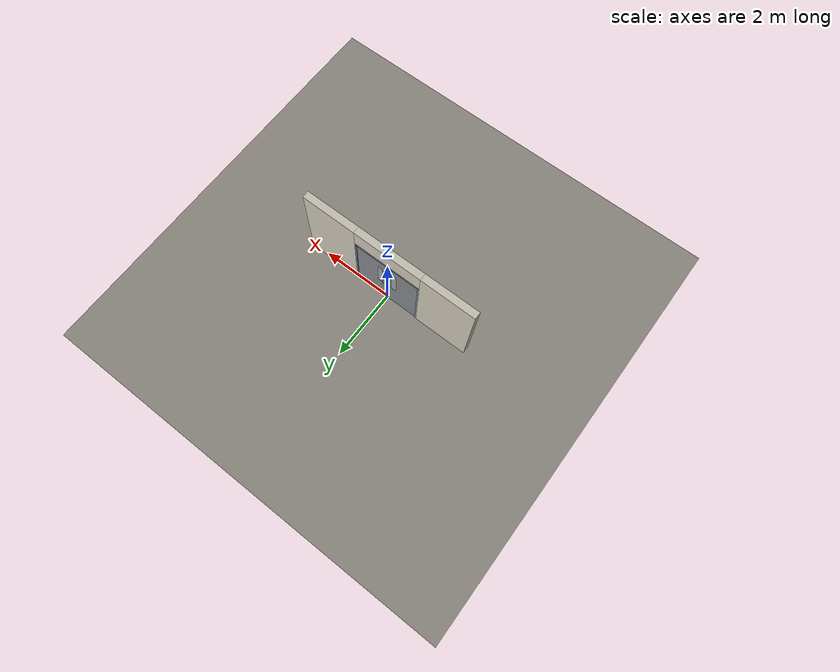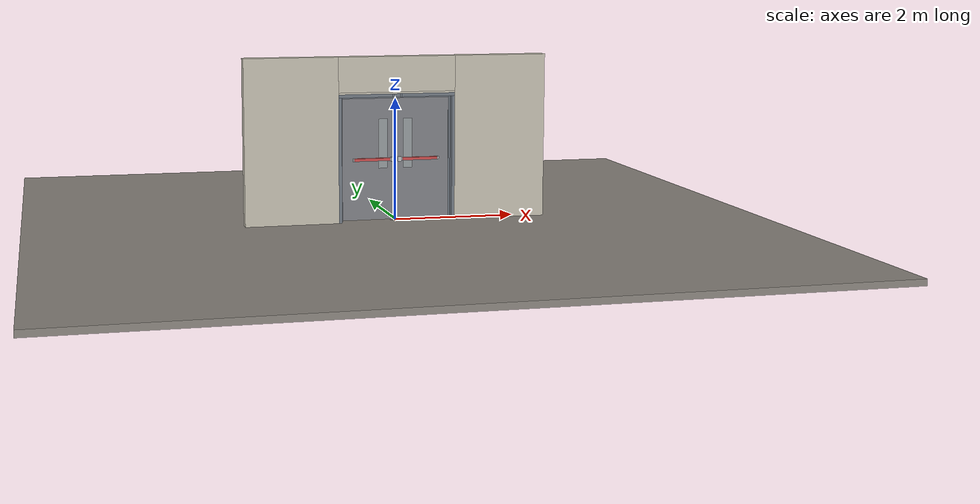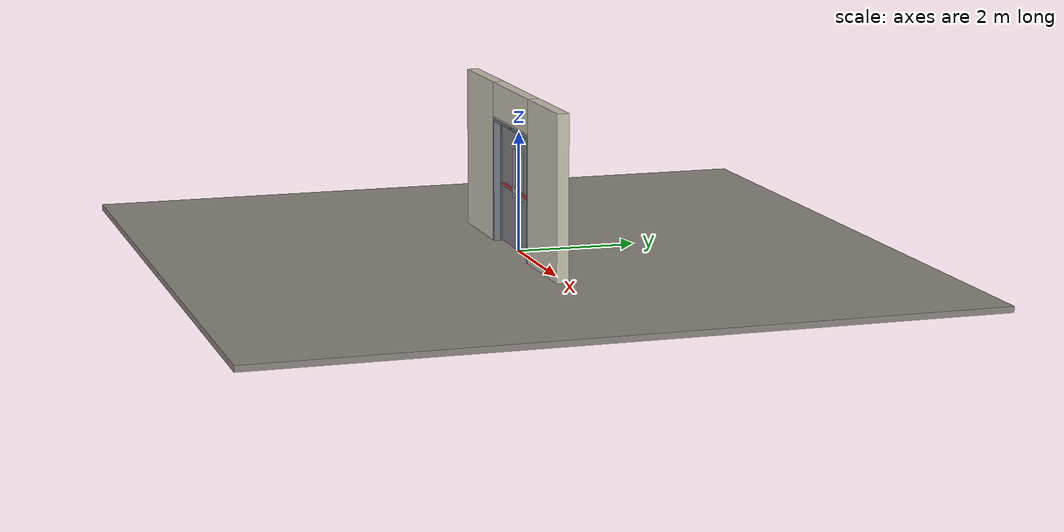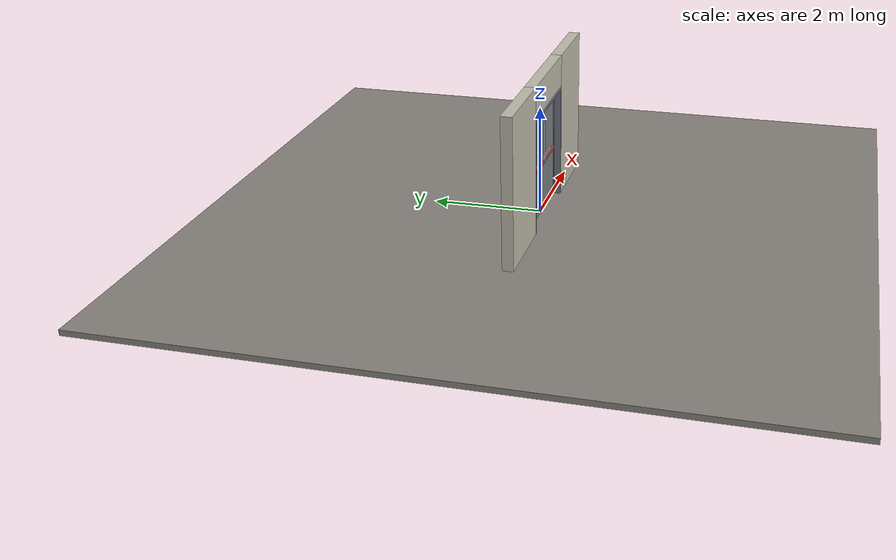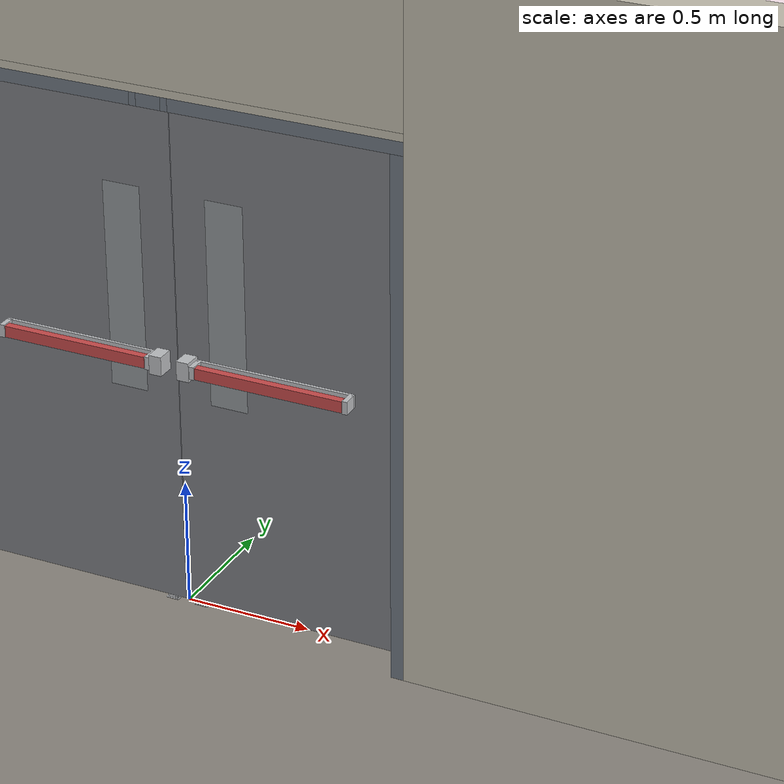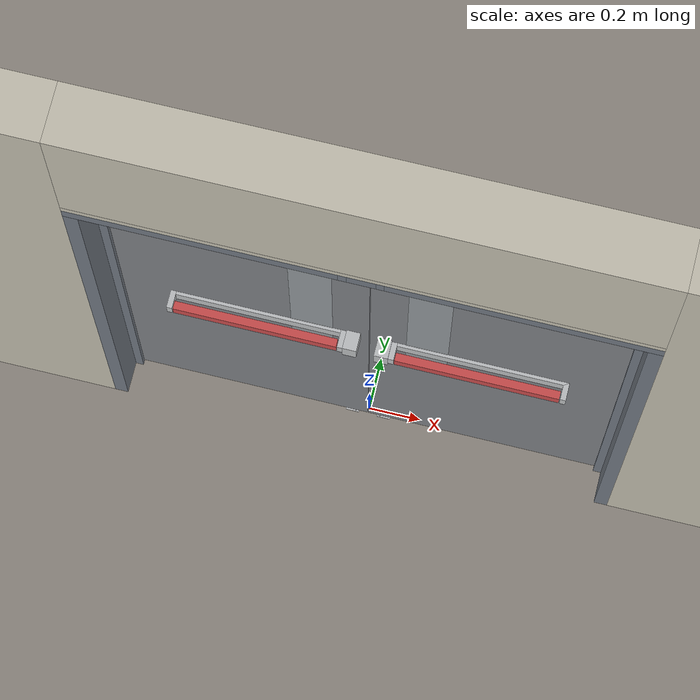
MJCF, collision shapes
<?xml version="1.0" ?>
<mujoco model="db0494_swing_double_minimal">
  <compiler angle="radian" meshdir="../../hardware" texturedir="../../textures" autolimits="true" inertiafromgeom="false"/>
  <option timestep="0.002" integrator="implicitfast" cone="elliptic" impratio="10" noslip_iterations="3">
    <flag multiccd="enable"/>
  </option>
  <size memory="16M"/>
  <default>
    <geom condim="4" solref="0.005 1" solimp="0.95 0.99 0.001"/>
    <joint solreflimit="0.005 1" solimplimit="0.95 0.99 0.001"/>
    <tendon solreflimit="0.005 1"/>
    <equality solref="0.002 1"/>
  </default>
  <visual>
    <headlight ambient="0.4 0.4 0.4" diffuse="0.7 0.7 0.7" specular="0.2 0.2 0.2"/>
    <quality shadowsize="4096"/>
    <map znear="0.01" zfar="60"/>
  </visual>
  <asset>
    <mesh name="pull_1e5d69a91a" file="pull_1e5d69a91a.obj"/>
    <material name="mat_floor" rgba="0.55 0.53 0.5 1" specular="0.2" shininess="0.15" reflectance="0"/>
    <material name="mat_wall" rgba="0.78 0.76 0.7 1" specular="0.2" shininess="0.1" reflectance="0"/>
    <material name="mat_leaf_a" rgba="0.5 0.51 0.53 1" specular="0.23" shininess="0.62" reflectance="0.02"/>
    <material name="mat_glass" rgba="0.8 0.85 0.85 0.35" specular="0.2" shininess="0.9" reflectance="0.1"/>
    <material name="mat_hinge" rgba="0.65 0.66 0.68 1" specular="0.74" shininess="0.5" reflectance="0.36"/>
    <material name="mat_op_stainless" rgba="0.75 0.76 0.77 1" specular="0.8" shininess="0.65" reflectance="0.4"/>
    <material name="mat_bolt" rgba="0.75 0.76 0.77 1" specular="0.8" shininess="0.65" reflectance="0.4"/>
    <material name="mat_maglock" rgba="0.22 0.17 0.13 1" specular="0.8" shininess="0.6" reflectance="0.4"/>
    <material name="mat_closer" rgba="0.22 0.17 0.13 1" specular="0.8" shininess="0.6" reflectance="0.4"/>
    <material name="mat_kick" rgba="0.75 0.76 0.77 1" specular="0.8" shininess="0.65" reflectance="0.4"/>
    <material name="mat_exit_sign" rgba="0.85 0.1 0.1 1" specular="0.2" shininess="0.6" reflectance="0"/>
    <material name="mat_sign_bracket" rgba="0.8 0.81 0.83 1" specular="0.8" shininess="0.6" reflectance="0.4"/>
    <material name="mat_leaf_b" rgba="0.5 0.51 0.53 1" specular="0.23" shininess="0.62" reflectance="0.02"/>
    <material name="mat_frame" rgba="0.45 0.48 0.52 1" specular="0.32" shininess="0.6" reflectance="0.08"/>
    <material name="mat_astragal" rgba="0.8 0.81 0.83 1" specular="0.8" shininess="0.6" reflectance="0.4"/>
    <texture name="skybox" type="skybox" builtin="gradient" rgb1="0.6 0.7 0.85" rgb2="0.9 0.92 0.95" width="256" height="256"/>
  </asset>
  <worldbody>
    <light name="sun" pos="1.5 -2.5 4" dir="-0.3 0.5 -0.8" directional="true" diffuse="0.8 0.8 0.8" specular="0.3 0.3 0.3" castshadow="true"/>
    <light name="fill" pos="-1.5 2.5 3" dir="0.3 -0.5 -0.7" directional="true" diffuse="0.35 0.35 0.4" castshadow="false"/>
    <camera name="robot_view" pos="0 -2.600187 1.734312" xyaxes="1 0 0 0 0.26963 0.962964" fovy="52"/>
    <camera name="far_view" pos="0 2.484187 1.734312" xyaxes="-1 0 0 0 -0.26963 0.962964" fovy="52"/>
    <camera name="iso" pos="-1.932062 -2.193437 2.141063" xyaxes="0.741536 -0.670913 0 0.242917 0.268487 0.932151" fovy="46"/>
    <camera name="detail_handle" pos="0.0885 -0.718 1.296" xyaxes="0.97561 0.219512 0 -0.070934 0.315262 0.94635" fovy="38"/>
    <geom name="floor" type="box" size="6 6 0.05" pos="0 0 -0.05" material="mat_floor" group="0" contype="1" conaffinity="1" friction="0.8 0.005 0.0001" density="2400"/>
    <geom name="wall_left" type="box" size="0.76575 0.1 1.35" pos="-1.73425 -0.058 1.35" material="mat_wall" group="0" contype="1" conaffinity="1" friction="0.6 0.005 0.0001" density="800"/>
    <geom name="wall_right" type="box" size="0.76575 0.1 1.35" pos="1.73425 -0.058 1.35" material="mat_wall" group="0" contype="1" conaffinity="1" friction="0.6 0.005 0.0001" density="800"/>
    <geom name="wall_header" type="box" size="0.9685 0.1 0.2875" pos="0 -0.058 2.4125" material="mat_wall" group="0" contype="1" conaffinity="1" friction="0.6 0.005 0.0001" density="800"/>
    <geom name="leaf_a_bottom_strike_plate" type="box" size="0.0255 0.0255 0.00075" pos="-0.0615 0 0.00075" material="mat_bolt" group="0" contype="1" conaffinity="1" friction="0.6 0.005 0.0001" density="7850"/>
    <geom name="leaf_a_bottom_strike_p" type="box" size="0.0215 0.004 0.00575" pos="-0.0615 0.0145 0.00725" material="mat_bolt" group="0" contype="1" conaffinity="1" friction="0.6 0.005 0.0001" density="7850"/>
    <geom name="leaf_a_bottom_strike_n" type="box" size="0.0215 0.004 0.00575" pos="-0.0615 -0.0145 0.00725" material="mat_bolt" group="0" contype="1" conaffinity="1" friction="0.6 0.005 0.0001" density="7850"/>
    <geom name="leaf_a_bottom_strike_e" type="box" size="0.004 0.0215 0.00575" pos="-0.047 0 0.00725" material="mat_bolt" group="0" contype="1" conaffinity="1" friction="0.6 0.005 0.0001" density="7850"/>
    <geom name="leaf_b_bottom_strike_plate" type="box" size="0.0255 0.0255 0.00075" pos="0.0615 0 0.00075" material="mat_bolt" group="0" contype="1" conaffinity="1" friction="0.6 0.005 0.0001" density="7850"/>
    <geom name="leaf_b_bottom_strike_p" type="box" size="0.0215 0.004 0.00575" pos="0.0615 0.0145 0.00725" material="mat_bolt" group="0" contype="1" conaffinity="1" friction="0.6 0.005 0.0001" density="7850"/>
    <geom name="leaf_b_bottom_strike_n" type="box" size="0.0215 0.004 0.00575" pos="0.0615 -0.0145 0.00725" material="mat_bolt" group="0" contype="1" conaffinity="1" friction="0.6 0.005 0.0001" density="7850"/>
    <geom name="leaf_b_bottom_strike_e" type="box" size="0.004 0.0215 0.00575" pos="0.047 0 0.00725" material="mat_bolt" group="0" contype="1" conaffinity="1" friction="0.6 0.005 0.0001" density="7850"/>
    <geom name="jamb_l" type="box" size="0.025 0.1 1.0225" pos="-0.9435 -0.058 1.0225" material="mat_frame" group="0" contype="1" conaffinity="1" friction="0.6 0.005 0.0001" density="300"/>
    <geom name="jamb_r" type="box" size="0.025 0.1 1.0225" pos="0.9435 -0.058 1.0225" material="mat_frame" group="0" contype="1" conaffinity="1" friction="0.6 0.005 0.0001" density="300"/>
    <geom name="jamb_head_pwall_-61_n" type="box" size="0.0135 0.0735 0.025" pos="-0.0615 -0.0845 2.07" material="mat_frame" group="0" contype="1" conaffinity="1" friction="0.6 0.005 0.0001" density="300"/>
    <geom name="jamb_head_pwall_-61_p" type="box" size="0.0135 0.0155 0.025" pos="-0.0615 0.0265 2.07" material="mat_frame" group="0" contype="1" conaffinity="1" friction="0.6 0.005 0.0001" density="300"/>
    <geom name="jamb_head_pback_-61" type="box" size="0.0135 0.011 0.0135" pos="-0.0615 0 2.0815" material="mat_frame" group="0" contype="1" conaffinity="1" friction="0.6 0.005 0.0001" density="300"/>
    <geom name="jamb_head_pwall_61_n" type="box" size="0.0135 0.0735 0.025" pos="0.0615 -0.0845 2.07" material="mat_frame" group="0" contype="1" conaffinity="1" friction="0.6 0.005 0.0001" density="300"/>
    <geom name="jamb_head_pwall_61_p" type="box" size="0.0135 0.0155 0.025" pos="0.0615 0.0265 2.07" material="mat_frame" group="0" contype="1" conaffinity="1" friction="0.6 0.005 0.0001" density="300"/>
    <geom name="jamb_head_pback_61" type="box" size="0.0135 0.011 0.0135" pos="0.0615 0 2.0815" material="mat_frame" group="0" contype="1" conaffinity="1" friction="0.6 0.005 0.0001" density="300"/>
    <geom name="jamb_head_0" type="box" size="0.44675 0.1 0.025" pos="-0.52175 -0.058 2.07" material="mat_frame" group="0" contype="1" conaffinity="1" friction="0.6 0.005 0.0001" density="300"/>
    <geom name="jamb_head_1" type="box" size="0.048 0.1 0.025" pos="0 -0.058 2.07" material="mat_frame" group="0" contype="1" conaffinity="1" friction="0.6 0.005 0.0001" density="300"/>
    <geom name="jamb_head_2" type="box" size="0.44675 0.1 0.025" pos="0.52175 -0.058 2.07" material="mat_frame" group="0" contype="1" conaffinity="1" friction="0.6 0.005 0.0001" density="300"/>
    <geom name="head_stud" type="box" size="0.9685 0.1 0.015" pos="0 -0.058 2.11" material="mat_wall" group="0" contype="1" conaffinity="1" friction="0.6 0.005 0.0001" density="500"/>
    <geom name="stop_l" type="box" size="0.015 0.008 1.0225" pos="-0.9035 -0.0305 1.0225" material="mat_frame" group="0" contype="1" conaffinity="1" friction="0.6 0.005 0.0001" density="300"/>
    <geom name="stop_r" type="box" size="0.015 0.008 1.0225" pos="0.9035 -0.0305 1.0225" material="mat_frame" group="0" contype="1" conaffinity="1" friction="0.6 0.005 0.0001" density="300"/>
    <geom name="stop_head" type="box" size="0.9185 0.008 0.015" pos="0 -0.0305 2.03" material="mat_frame" group="0" contype="1" conaffinity="1" friction="0.6 0.005 0.0001" density="300"/>
    <site name="approach_point" pos="0 -1.5 0" quat="1 0 0 0" size="0.05" rgba="0.2 0.9 0.2 0.5" group="4"/>
    <site name="goal_point" pos="0 1.5 0" quat="1 0 0 0" size="0.05" rgba="0.2 0.9 0.2 0.5" group="4"/>
    <site name="door_plane_center" pos="0 0 1.0225" quat="1 0 0 0" size="0.02" rgba="0.2 0.9 0.2 0.5" group="4"/>
    <site name="approach_point_2" pos="0 -1.5 0" quat="1 0 0 0" size="0.05" rgba="0.2 0.9 0.2 0.5" group="4"/>
    <site name="goal_point_2" pos="0 1.5 0" quat="1 0 0 0" size="0.05" rgba="0.2 0.9 0.2 0.5" group="4"/>
    <site name="door_plane_center_2" pos="0 0 1.0225" quat="1 0 0 0" size="0.02" rgba="0.2 0.9 0.2 0.5" group="4"/>
    <site name="approach_point_3" pos="0 -1.5 0" quat="1 0 0 0" size="0.05" rgba="0.2 0.9 0.2 0.5" group="4"/>
    <site name="goal_point_3" pos="0 1.5 0" quat="1 0 0 0" size="0.05" rgba="0.2 0.9 0.2 0.5" group="4"/>
    <site name="door_plane_center_3" pos="0 0 1.0225" quat="1 0 0 0" size="0.02" rgba="0.2 0.9 0.2 0.5" group="4"/>
    <body name="leaf_a" pos="-0.9185 0 0">
      <inertial pos="0.472646 -0.001423 1.027764" mass="46.329684" quat="0.500484 0.499233 -0.50074 0.499541" diaginertia="3.30895111 14.876735691 18.156477941"/>
      <joint name="leaf_a_hinge" type="hinge" axis="0 0 1" pos="0.003 0.029 0" limited="true" range="0 1.745329" damping="10.25611" frictionloss="0.326597" stiffness="13.171663" springref="-1.46223" armature="0.02"/>
      <geom name="leaf_a_slab" type="box" size="0.457 0.022 1.0125" pos="0.46 0 1.0285" material="mat_leaf_a" group="0" contype="1" conaffinity="1" friction="0.4 0.005 0.0001" density="1"/>
      <geom name="leaf_a_glass_0" type="box" size="0.075 0.0228 0.405" pos="0.71146 0 1.2715" material="mat_glass" group="1" contype="0" conaffinity="0" density="1"/>
      <geom name="leaf_a_exit_device_rail" type="box" size="0.31705 0.006 0.025" pos="0.51995 -0.028 1.016" material="mat_op_stainless" group="0" contype="1" conaffinity="1" friction="0.6 0.005 0.0001" density="3000"/>
      <geom name="leaf_a_exit_device_rail_end_n" type="box" size="0.01 0.0325 0.025" pos="0.2129 -0.0545 1.016" material="mat_op_stainless" group="0" contype="1" conaffinity="1" friction="0.6 0.005 0.0001" density="3000"/>
      <geom name="leaf_a_exit_device_rail_end_p" type="box" size="0.01 0.0325 0.025" pos="0.827 -0.0545 1.016" material="mat_op_stainless" group="0" contype="1" conaffinity="1" friction="0.6 0.005 0.0001" density="3000"/>
      <geom name="leaf_a_exit_device_case" type="box" size="0.025 0.034125 0.0375" pos="0.862 -0.056125 1.016" material="mat_op_stainless" group="0" contype="1" conaffinity="1" friction="0.6 0.005 0.0001" density="3000"/>
      <geom name="leaf_a_far_pull_p" type="mesh" mesh="pull_1e5d69a91a" pos="0.827 0.022 1.016" quat="-0.707107 0.707107 0 0" material="mat_op_stainless" group="1" contype="0" conaffinity="0" density="3000"/>
      <geom name="leaf_a_far_pull_col_p" type="capsule" size="0.0095 0.08" pos="0.827 0.082 1.016" material="mat_op_stainless" group="3" contype="1" conaffinity="1" rgba="0.8 0.3 0.3 0.25" friction="0.7 0.01 0.0001" density="3000"/>
      <site name="leaf_a_far_pull_grip_p" pos="0.827 0.082 1.016" quat="1 0 0 0" size="0.012" rgba="0.2 0.9 0.2 0.5" group="4"/>
      <site name="leaf_a_edge_mid" pos="0.917 0 1.0125" quat="1 0 0 0" size="0.02" rgba="0.2 0.9 0.2 0.5" group="4"/>
      <body name="leaf_a_exit_device" pos="0.51995 -0.022 1.016">
        <inertial pos="0 -0.05 0" mass="2.381805" quat="0 0 0.707107 0.707107" diaginertia="0.000580565 0.068826545 0.069049839"/>
        <joint name="leaf_a_exit_device_slide" type="slide" axis="0 1 0" limited="true" range="0 0.016" damping="165.880125" frictionloss="0.5" stiffness="1400" springref="-0.015714" armature="0.15"/>
        <geom name="leaf_a_exit_device_pad_col" type="box" size="0.29405 0.015 0.0225" pos="0 -0.05 0" material="mat_op_stainless" group="3" contype="1" conaffinity="1" rgba="0.8 0.3 0.3 0.25" friction="0.8 0.01 0.0001" density="3000"/>
        <site name="leaf_a_exit_device_push" pos="0 -0.065 0" quat="1 0 0 0" size="0.015" rgba="0.2 0.9 0.2 0.5" group="4"/>
      </body>
      <body name="leaf_a_top_latch" pos="0.857 0 2.041">
        <inertial pos="0 0 -0.0155" mass="0.151026" quat="0.707107 0 0.707107 0" diaginertia="0.00000654 0.000053442 0.000053442"/>
        <joint name="leaf_a_top_latch_slide" type="slide" axis="0 0 -1" limited="true" range="0 0.019" damping="2" frictionloss="0.3" stiffness="800" springref="-0.01" armature="0.1"/>
        <geom name="leaf_a_top_latch_capsule" type="capsule" size="0.0095 0.025" pos="0 0 -0.0155" material="mat_bolt" group="0" contype="1" conaffinity="1" friction="0.2 0.005 0.0001" density="8500"/>
      </body>
      <body name="leaf_a_bottom_latch" pos="0.857 0 0.03">
        <inertial pos="0 0 0.012" mass="0.167896" quat="0.707107 0 0.707107 0" diaginertia="0.000007301 0.000072388 0.000072388"/>
        <joint name="leaf_a_bottom_latch_slide" type="slide" axis="0 0 1" limited="true" range="0 0.026" damping="2" frictionloss="0.3" stiffness="800" springref="-0.01" armature="0.1"/>
        <geom name="leaf_a_bottom_latch_capsule" type="capsule" size="0.0095 0.0285" pos="0 0 0.012" material="mat_bolt" group="0" contype="1" conaffinity="1" friction="0.2 0.005 0.0001" density="8500"/>
      </body>
    </body>
    <body name="leaf_b" pos="0.9185 0 0">
      <inertial pos="-0.472646 -0.001423 1.027764" mass="46.928128" quat="0.499541 0.50074 -0.499233 0.500484" diaginertia="3.351693076 15.068899585 18.391006508"/>
      <joint name="leaf_b_hinge" type="hinge" axis="0 0 -1" pos="-0.003 0.029 0" limited="true" range="0 1.745329" damping="10.25611" frictionloss="0.326597" stiffness="13.171663" springref="-1.46223" armature="0.02"/>
      <geom name="leaf_b_slab" type="box" size="0.457 0.022 1.0125" pos="-0.46 0 1.0285" material="mat_leaf_b" group="0" contype="1" conaffinity="1" friction="0.4 0.005 0.0001" density="1"/>
      <geom name="leaf_b_glass_0" type="box" size="0.075 0.0228 0.405" pos="-0.71146 0 1.2715" material="mat_glass" group="1" contype="0" conaffinity="0" density="1"/>
      <geom name="leaf_b_exit_device_rail" type="box" size="0.31705 0.006 0.025" pos="-0.51995 -0.028 1.016" material="mat_op_stainless" group="0" contype="1" conaffinity="1" friction="0.6 0.005 0.0001" density="3000"/>
      <geom name="leaf_b_exit_device_rail_end_n" type="box" size="0.01 0.0325 0.025" pos="-0.827 -0.0545 1.016" material="mat_op_stainless" group="0" contype="1" conaffinity="1" friction="0.6 0.005 0.0001" density="3000"/>
      <geom name="leaf_b_exit_device_rail_end_p" type="box" size="0.01 0.0325 0.025" pos="-0.2129 -0.0545 1.016" material="mat_op_stainless" group="0" contype="1" conaffinity="1" friction="0.6 0.005 0.0001" density="3000"/>
      <geom name="leaf_b_exit_device_case" type="box" size="0.025 0.034125 0.0375" pos="-0.862 -0.056125 1.016" material="mat_op_stainless" group="0" contype="1" conaffinity="1" friction="0.6 0.005 0.0001" density="3000"/>
      <geom name="leaf_b_far_pull_p" type="mesh" mesh="pull_1e5d69a91a" pos="-0.827 0.022 1.016" quat="0 0 0.707107 0.707107" material="mat_op_stainless" group="1" contype="0" conaffinity="0" density="3000"/>
      <geom name="leaf_b_far_pull_col_p" type="capsule" size="0.0095 0.08" pos="-0.827 0.082 1.016" material="mat_op_stainless" group="3" contype="1" conaffinity="1" rgba="0.8 0.3 0.3 0.25" friction="0.7 0.01 0.0001" density="3000"/>
      <site name="leaf_b_far_pull_grip_p" pos="-0.827 0.082 1.016" quat="1 0 0 0" size="0.012" rgba="0.2 0.9 0.2 0.5" group="4"/>
      <site name="leaf_b_edge_mid" pos="-0.917 0 1.0125" quat="1 0 0 0" size="0.02" rgba="0.2 0.9 0.2 0.5" group="4"/>
      <body name="leaf_b_exit_device" pos="-0.51995 -0.022 1.016">
        <inertial pos="0 -0.05 0" mass="2.381805" quat="0 0 0.707107 0.707107" diaginertia="0.000580565 0.068826545 0.069049839"/>
        <joint name="leaf_b_exit_device_slide" type="slide" axis="0 1 0" limited="true" range="0 0.016" damping="165.880125" frictionloss="0.5" stiffness="1400" springref="-0.015714" armature="0.15"/>
        <geom name="leaf_b_exit_device_pad_col" type="box" size="0.29405 0.015 0.0225" pos="0 -0.05 0" material="mat_op_stainless" group="3" contype="1" conaffinity="1" rgba="0.8 0.3 0.3 0.25" friction="0.8 0.01 0.0001" density="3000"/>
        <site name="leaf_b_exit_device_push" pos="0 -0.065 0" quat="1 0 0 0" size="0.015" rgba="0.2 0.9 0.2 0.5" group="4"/>
      </body>
      <body name="leaf_b_top_latch" pos="-0.857 0 2.041">
        <inertial pos="0 0 -0.0155" mass="0.151026" quat="0.707107 0 0.707107 0" diaginertia="0.00000654 0.000053442 0.000053442"/>
        <joint name="leaf_b_top_latch_slide" type="slide" axis="0 0 -1" limited="true" range="0 0.019" damping="2" frictionloss="0.3" stiffness="800" springref="-0.01" armature="0.1"/>
        <geom name="leaf_b_top_latch_capsule" type="capsule" size="0.0095 0.025" pos="0 0 -0.0155" material="mat_bolt" group="0" contype="1" conaffinity="1" friction="0.2 0.005 0.0001" density="8500"/>
      </body>
      <body name="leaf_b_bottom_latch" pos="-0.857 0 0.03">
        <inertial pos="0 0 0.012" mass="0.167896" quat="0.707107 0 0.707107 0" diaginertia="0.000007301 0.000072388 0.000072388"/>
        <joint name="leaf_b_bottom_latch_slide" type="slide" axis="0 0 1" limited="true" range="0 0.026" damping="2" frictionloss="0.3" stiffness="800" springref="-0.01" armature="0.1"/>
        <geom name="leaf_b_bottom_latch_capsule" type="capsule" size="0.0095 0.0285" pos="0 0 0.012" material="mat_bolt" group="0" contype="1" conaffinity="1" friction="0.2 0.005 0.0001" density="8500"/>
      </body>
    </body>
  </worldbody>
  <tendon>
    <fixed name="leaf_a_top_latch_coupling" limited="true" range="0 10">
      <joint joint="leaf_a_top_latch_slide" coef="1"/>
      <joint joint="leaf_a_exit_device_slide" coef="-1.142857"/>
    </fixed>
    <fixed name="leaf_a_bottom_latch_coupling" limited="true" range="0 10">
      <joint joint="leaf_a_bottom_latch_slide" coef="1"/>
      <joint joint="leaf_a_exit_device_slide" coef="-1.56391"/>
    </fixed>
    <fixed name="leaf_b_top_latch_coupling" limited="true" range="0 10">
      <joint joint="leaf_b_top_latch_slide" coef="1"/>
      <joint joint="leaf_b_exit_device_slide" coef="-1.142857"/>
    </fixed>
    <fixed name="leaf_b_bottom_latch_coupling" limited="true" range="0 10">
      <joint joint="leaf_b_bottom_latch_slide" coef="1"/>
      <joint joint="leaf_b_exit_device_slide" coef="-1.56391"/>
    </fixed>
  </tendon>
  <equality>
    <weld name="leaf_a_maglock" body1="leaf_a" body2="world" active="true"/>
  </equality>
  <sensor>
    <jointpos name="leaf_a_hinge_pos" joint="leaf_a_hinge"/>
    <jointvel name="leaf_a_hinge_vel" joint="leaf_a_hinge"/>
    <jointpos name="leaf_a_exit_device_slide_pos" joint="leaf_a_exit_device_slide"/>
    <jointvel name="leaf_a_exit_device_slide_vel" joint="leaf_a_exit_device_slide"/>
    <jointpos name="leaf_a_top_latch_slide_pos" joint="leaf_a_top_latch_slide"/>
    <jointvel name="leaf_a_top_latch_slide_vel" joint="leaf_a_top_latch_slide"/>
    <jointpos name="leaf_a_bottom_latch_slide_pos" joint="leaf_a_bottom_latch_slide"/>
    <jointvel name="leaf_a_bottom_latch_slide_vel" joint="leaf_a_bottom_latch_slide"/>
    <jointpos name="leaf_b_hinge_pos" joint="leaf_b_hinge"/>
    <jointvel name="leaf_b_hinge_vel" joint="leaf_b_hinge"/>
    <jointpos name="leaf_b_exit_device_slide_pos" joint="leaf_b_exit_device_slide"/>
    <jointvel name="leaf_b_exit_device_slide_vel" joint="leaf_b_exit_device_slide"/>
    <jointpos name="leaf_b_top_latch_slide_pos" joint="leaf_b_top_latch_slide"/>
    <jointvel name="leaf_b_top_latch_slide_vel" joint="leaf_b_top_latch_slide"/>
    <jointpos name="leaf_b_bottom_latch_slide_pos" joint="leaf_b_bottom_latch_slide"/>
    <jointvel name="leaf_b_bottom_latch_slide_vel" joint="leaf_b_bottom_latch_slide"/>
  </sensor>
</mujoco>
